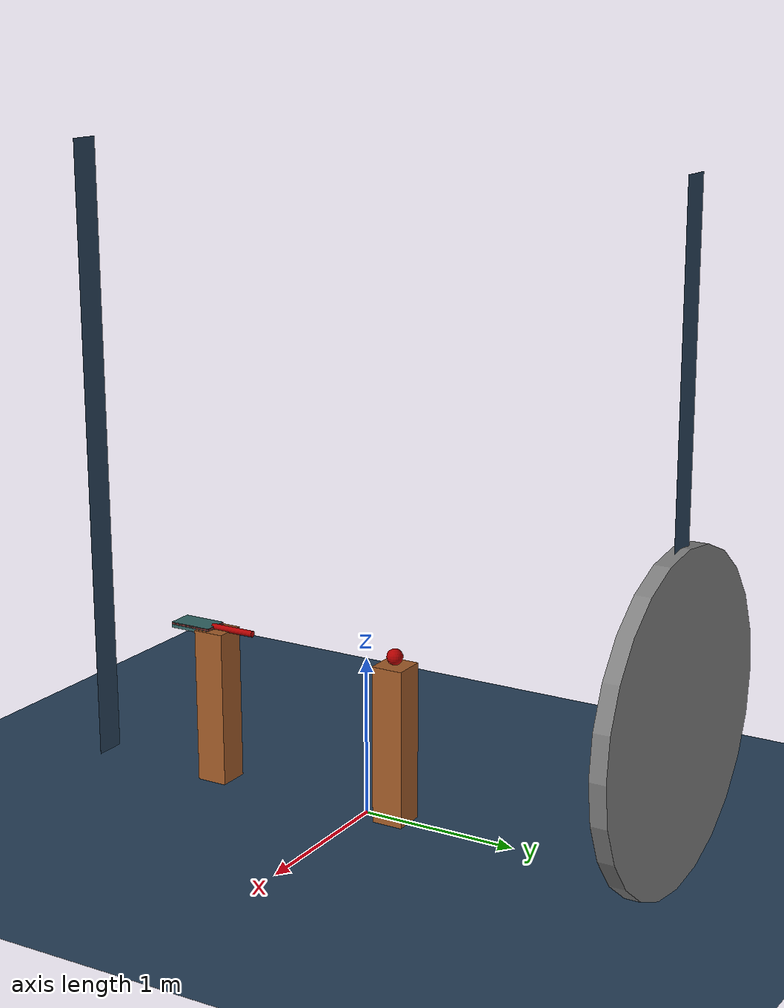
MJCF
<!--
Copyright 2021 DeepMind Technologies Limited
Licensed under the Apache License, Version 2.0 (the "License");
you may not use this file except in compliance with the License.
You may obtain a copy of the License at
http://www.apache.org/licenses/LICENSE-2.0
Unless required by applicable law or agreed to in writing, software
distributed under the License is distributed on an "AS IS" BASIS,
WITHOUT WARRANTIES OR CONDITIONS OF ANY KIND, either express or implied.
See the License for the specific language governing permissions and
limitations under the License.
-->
<mujoco model="Tennis serve">
  <visual>
    <map force="0.1" zfar="30"/>
    <rgba haze="0.15 0.25 0.35 1"/>
      <!--offwidth="2560" offheight="1440"-->
    <global
      elevation="20"
      azimuth="10"
      />
    <headlight ambient=".8 .8 .8" specular=".8 .8 .8"/>
  </visual>

  <default>
    <default class="racket">
      <geom condim="1" friction=".7" solimp=".9 .99 .003" />
    </default>
  </default>

  <statistic center="0 0 0.7"/>

  <asset>
    <texture type="skybox" builtin="gradient" rgb1=".3 .5 .7" rgb2="0 0 0"
      width="32" height="512"/>
    <texture name="grid" type="2d" builtin="checker" width="512" height="512"
      rgb1=".1 .2 .3" rgb2=".2 .3 .4"/>
    <material name="grid" texture="grid" texrepeat="1 1" texuniform="true"
      reflectance=".2"/>
    <texture name="obj" type="cube" builtin="flat" mark="cross" width="128"
      height="128" rgb1="0.8 0.6 0.4" rgb2="0.8 0.6 0.4" markrgb="1 1 1"
      random="0.01"/>
    <material name="obj" texture="obj" texuniform="true" rgba="0.8 0.6 .4 1"/>
  </asset>

  <worldbody>
    <geom name="floor" size="3 3 3" type="plane" material="grid"
      condim="3"/>
    <body name="wall" pos="0 0 0" xyaxes="1 0 0 0 0 1">
      <geom name="rwall2" pos = "0 2 -2" size=".1 2 .05" type="plane"
        material="grid" condim="3"/>
    </body>
    <body name="lwall" pos="0 0 0" xyaxes="-1 0 0 0 0 1">
      <geom name="lwall2" pos = "0 2 -2" size=".1 2 .05" type="plane"
        material="grid" condim="3"/>
    </body>
    <body name="ceil" pos="0 0 0" xyaxes="-1 0 0 0 1 0">
      <geom name="ceil2" pos = "0 0 -3" size=".1 2 .05" type="plane"
        material="grid" condim="3"/>
    </body>
    <camera name="forward" pos="9 0 0" xyaxes="0 1 0 0 0 1"/>

    <geom name="ballstand" size=".1 .1 .5" pos="0 .2 .5" type="box"
      material="obj" condim="3"/>
    <body name="ball" pos="0 0.2 1.05">
      <geom name="ball" size=".05 .05 .05" pos="0 0 0" type="sphere"
        material="obj" condim="3" friction="1 0.005 0.0001"
        rgba=".7 0 0 1" mass=".057" contype="10" conaffinity="01"/>
      <site name="ball_base" pos="0 0 -.05" size=".01" rgba=".7 .7 .2 0"/>
      <site name="ball" pos="0 0 0"/>
      <site name="ball_top" pos="0 0 0.05" rgba=".7 .7 .2 0"/>
      <joint name="ball_z_root" type="slide" axis="0 0 1" range="-100 100"/>
      <joint name="ball_x_root" type="slide" axis="0 1 0" range="-100 100"/>
      <joint name="ball_hinge_root" type="hinge" axis="1 0 0" range="-1000 1000"/>
    </body>

    <geom name="racketstand" size=".1 .1 .5" pos="0 -1.1 .5" type="box"
      material="obj" condim="3"/>
    <body name="racket" pos="0 -1.04 1.01" childclass="racket">
      <geom name="racket_handle" type="cylinder" size=".02 .15" pos="0 .06 0"
        material="obj" condim="3" rgba=".7 0 0 1"
        zaxis="0 1 0" friction="1 0.005 .0001" density="500"/>
      <site name="racket_handle" pos="0 .09 0" size=".05" rgba=".7 .7 .2 0"/>
      <site name="racket_handle_top" pos="0 .09 .02" size=".05" rgba=".7 .7 .2 0"/>
      <geom name="racket_handle_ball" type="sphere" size=".02" pos="0 .2 0"
        material="obj" condim="3" friction="1 0.005 0.0001" rgba=".7 0 0 1"
        density="2000"/>
      <geom name="racket_net" type="box" size=".08 .14 .008" pos="0 -.21 0"
        material="obj" condim="3" friction="1 0.005 0.0001" rgba=".7 0 0 .5"
        density="200" contype="00" conaffinity="01" solref=".02 .4"/>
      <geom name="racket_net_back" type="box" size=".08 .14 .018" pos="0 -.21 -.01"
        material="obj" condim="3" friction="1 0.005 0.0001" rgba=".2 .4 .4 1"
        density="0" contype="10" conaffinity="10" solref=".02 .4"/>
      <site name="racket" pos="0 0 0"/>
      <joint name="racket_z_root" type="slide" axis="0 0 1" range="-100 100"/>
      <joint name="racket_x_root" type="slide" axis="0 1 0" range="-100 100"/>
      <joint name="racket_hinge_root" type="hinge" axis="1 0 0"
        range="-1000 1000"/>
    </body>

    <body name="target" pos="0 2 1.0">
      <geom name="target" type="cylinder" pos="0 0 0" size="1 .05"
        zaxis="0 1 0"/>
      <site name="bullseye" pos="0 -.05 0" size="0.06" rgba="1 1 1 0"/>
    </body>

  </worldbody>
</mujoco>
